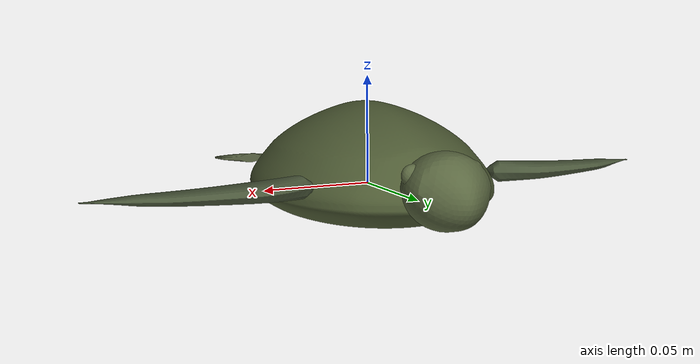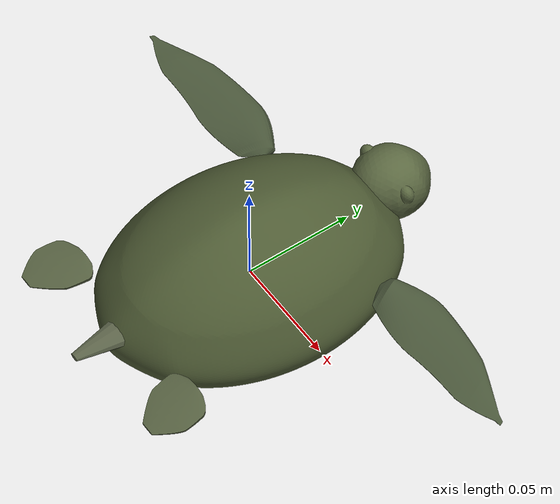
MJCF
<mujoco model="SeaTurtle3D_Swimmer">

    <compiler angle="degree" inertiafromgeom="true" meshdir="meshes/"/>
    <option timestep="0.01" gravity="0 0 0" integrator="RK4"/>

    <default>
        <joint damping="0.35" stiffness="0" armature="0.12"/>
        <motor ctrlrange="-1 1" ctrllimited="true"/>
        <geom solref="0.002 1" solimp="0.9 0.95 0.001"/>
    </default>

    <asset>
        <!-- Materials: olive/green-brown sea turtle coloring -->
        <material name="shell_mat"          rgba="0.30 0.35 0.20 1"/>
        <material name="head_mat"           rgba="0.35 0.40 0.25 1"/>
        <material name="flipper_front_mat"  rgba="0.28 0.33 0.22 1"/>
        <material name="flipper_rear_mat"   rgba="0.32 0.36 0.24 1"/>
        <material name="tail_mat"           rgba="0.35 0.38 0.28 1"/>

        <!-- Meshes (scale 1.1x — reduced from 1.4x for better boundary margin) -->
        <mesh name="shell_mesh"             file="turtle_shell.stl"             scale="1.1 1.1 1.1"/>
        <mesh name="head_mesh"              file="turtle_head.stl"              scale="1.1 1.1 1.1"/>
        <mesh name="flipper_front_R_mesh"   file="turtle_flipper_front_R.stl"   scale="1.1 1.1 1.1"/>
        <mesh name="flipper_front_L_mesh"   file="turtle_flipper_front_L.stl"   scale="1.1 1.1 1.1"/>
        <mesh name="flipper_rear_R_mesh"    file="turtle_flipper_rear_R.stl"    scale="1.1 1.1 1.1"/>
        <mesh name="flipper_rear_L_mesh"    file="turtle_flipper_rear_L.stl"    scale="1.1 1.1 1.1"/>
        <mesh name="tail_mesh"              file="turtle_tail.stl"              scale="1.1 1.1 1.1"/>
    </asset>

    <worldbody>
        <body name="shell" pos="0 0 0">
            <freejoint name="root_joint"/>

            <geom name="shell_geom" type="mesh" mesh="shell_mesh"
                  material="shell_mat" density="1800"/>

            <!-- ============ HEAD (fixed to shell front) ============ -->
            <!-- Head position scaled to match 1.1x mesh -->
            <body name="head" pos="0 0.044 0.0066">
                <geom name="head_geom" type="mesh" mesh="head_mesh"
                      material="head_mat" density="2500"/>
            </body>

            <!-- ============ FRONT RIGHT FLIPPER (3DOF ball-like shoulder) ============ -->
            <!-- Shoulder: 3 hinge joints emulating a ball joint -->
            <!-- Z=CG plane (0.0076) to avoid lift bias from offset -->
            <body name="flipper_FR" pos="0.0418 0.0358 0.0076" euler="0 0 23">
                <joint name="f_FR_flap" type="hinge" axis="0 1 0"
                       limited="true" range="-45 45"/>
                <joint name="f_FR_rotate" type="hinge" axis="0.920 -0.392 0.0"
                       limited="true" range="-60 60"
                       damping="0.50" armature="0.12"/>

                <geom name="f_FR_geom" type="mesh" mesh="flipper_front_R_mesh"
                      material="flipper_front_mat" density="2200"/>
            </body>

            <!-- ============ FRONT LEFT FLIPPER (3DOF ball-like shoulder, mirrored) ============ -->
            <!-- Z=CG plane (0.0076) to avoid lift bias from offset -->
            <body name="flipper_FL" pos="-0.0418 0.0358 0.0076" euler="0 0 -23">
                <joint name="f_FL_flap" type="hinge" axis="0 1 0"
                       limited="true" range="-45 45"/>
                <joint name="f_FL_rotate" type="hinge" axis="-0.920 -0.392 0.0"
                       limited="true" range="-60 60"
                       damping="0.50" armature="0.12"/>

                <geom name="f_FL_geom" type="mesh" mesh="flipper_front_L_mesh"
                      material="flipper_front_mat" density="2200"/>
            </body>

            <!-- ============ REAR RIGHT FLIPPER (webbed foot, pointing backward) ============ -->
            <!-- Hip joint on CG plane (Z=0.0076) to avoid lift bias -->
            <body name="flipper_RR" pos="0.0407 -0.055 0.0076">
                <joint name="f_RR_rotate" type="hinge" axis="0 0 1"
                       limited="true" range="-5 50"
                       damping="0.12" armature="0.05"/>
                <joint name="f_RR_flap" type="hinge" axis="1 0 0"
                       limited="true" range="-40 40"/>

                <geom name="f_RR_geom" type="mesh" mesh="flipper_rear_R_mesh"
                      material="flipper_rear_mat" density="2000"/>
            </body>

            <!-- ============ REAR LEFT FLIPPER (mirrored, pointing backward) ============ -->
            <body name="flipper_RL" pos="-0.0407 -0.055 0.0076">
                <joint name="f_RL_rotate" type="hinge" axis="0 0 1"
                       limited="true" range="-50 5"
                       damping="0.12" armature="0.05"/>
                <joint name="f_RL_flap" type="hinge" axis="1 0 0"
                       limited="true" range="-40 40"/>

                <geom name="f_RL_geom" type="mesh" mesh="flipper_rear_L_mesh"
                      material="flipper_rear_mat" density="2000"/>
            </body>

            <!-- ============ TAIL ============ -->
            <!-- Tail base on CG plane (Z=0.0076) to avoid lift bias -->
            <body name="tail" pos="0 -0.0627 0.0076">
                <joint name="tail_yaw" type="hinge" axis="0 0 1"
                       limited="true" range="-35 35"/>

                <geom name="tail_geom" type="mesh" mesh="tail_mesh"
                      material="tail_mat" density="1800"/>
            </body>
        </body>

        <light directional="true" diffuse="0.9 0.9 0.9" pos="0 0 3" dir="0 0 -1"/>
    </worldbody>

    <actuator>

        <!-- Front-right flipper: 3 DOFs (ball-like shoulder) -->
        <position name="pos_f_FR_rotate" joint="f_FR_rotate" kp="5.0" kv="0.30"
                  ctrlrange="-0.864 0.864" forcerange="-3.0 3.0"/>
        <position name="pos_f_FR_flap"   joint="f_FR_flap"   kp="4.0" kv="0.15"
                  ctrlrange="-1.047 1.047" forcerange="-3.0 3.0"/>

        <!-- Front-left flipper: 3 DOFs (ball-like shoulder) -->
        <position name="pos_f_FL_rotate" joint="f_FL_rotate" kp="5.0" kv="0.30"
                  ctrlrange="-0.864 0.864" forcerange="-3.0 3.0"/>
        <position name="pos_f_FL_flap"   joint="f_FL_flap"   kp="4.0" kv="0.15"
                  ctrlrange="-1.047 1.047" forcerange="-3.0 3.0"/>

        <!-- Rear-right flipper: 2 DOFs -->
        <position name="pos_f_RR_rotate" joint="f_RR_rotate" kp="3.0" kv="0.10"
                  ctrlrange="-0.576 0.576" forcerange="-2.0 2.0"/>
        <position name="pos_f_RR_flap"   joint="f_RR_flap"   kp="2.5" kv="0.10"
                  ctrlrange="-0.698 0.698" forcerange="-1.5 1.5"/>

        <!-- Rear-left flipper: 2 DOFs -->
        <position name="pos_f_RL_rotate" joint="f_RL_rotate" kp="3.0" kv="0.10"
                  ctrlrange="-0.576 0.576" forcerange="-2.0 2.0"/>
        <position name="pos_f_RL_flap"   joint="f_RL_flap"   kp="2.5" kv="0.10"
                  ctrlrange="-0.698 0.698" forcerange="-1.5 1.5"/>

        <!-- Tail: 1 DOF -->
        <position name="pos_tail_yaw" joint="tail_yaw" kp="0.8" kv="0.12"
                  ctrlrange="-0.611 0.611" forcerange="-0.5 0.5"/>
    </actuator>
</mujoco>
